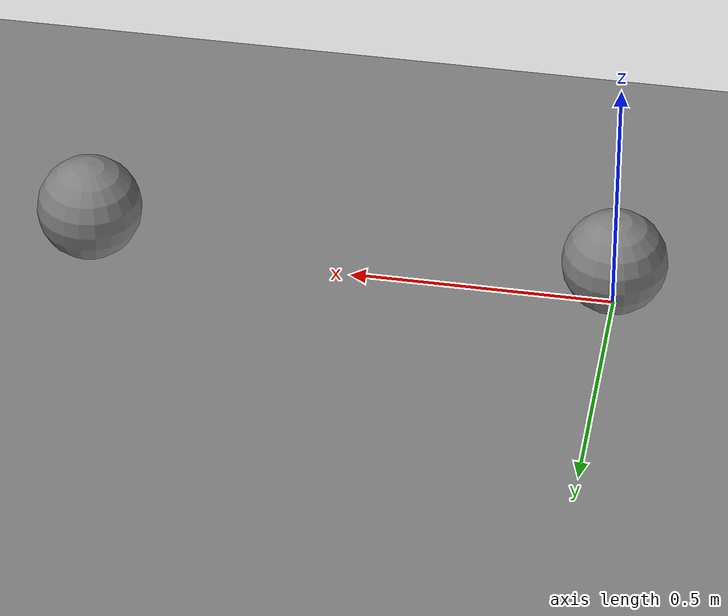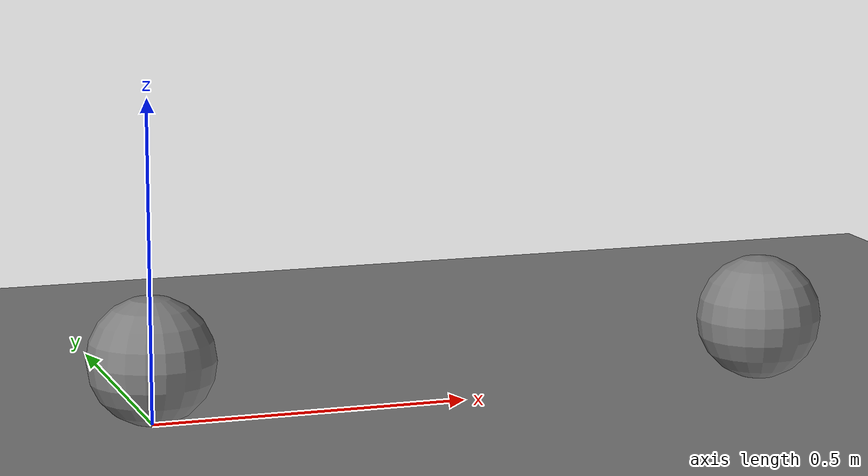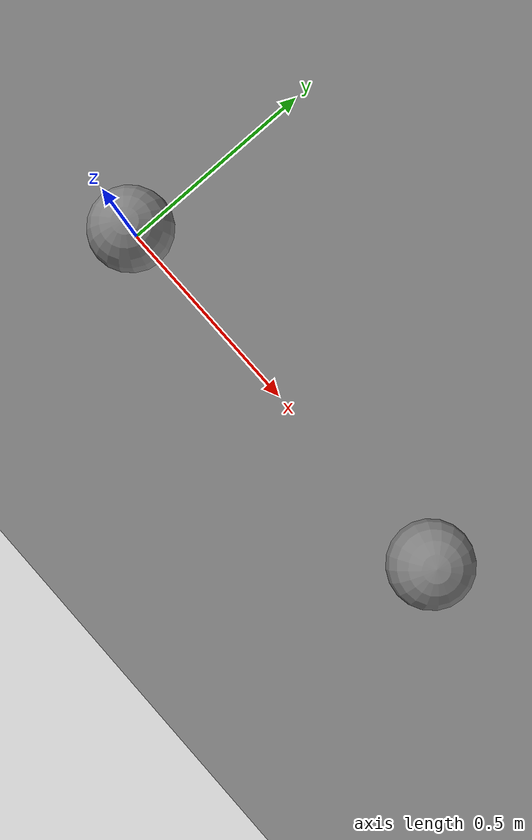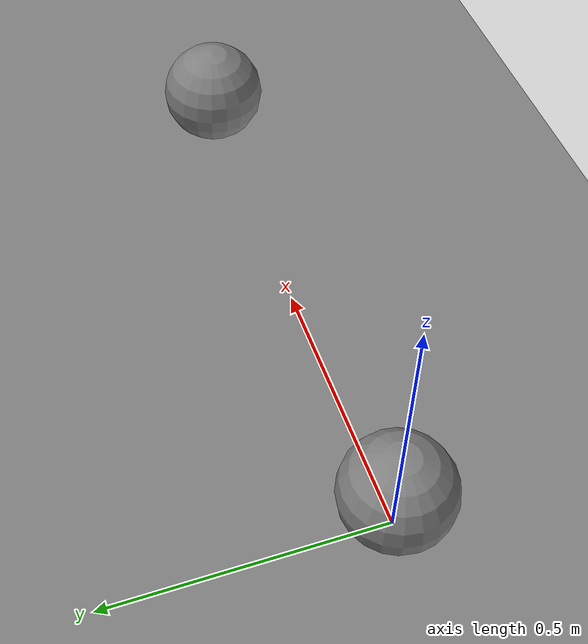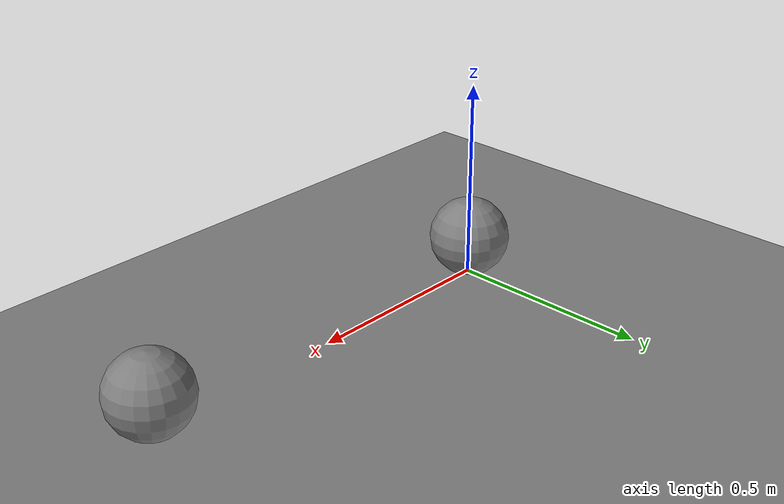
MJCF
<mujoco model="contact_sphere">
  <option timestep="0.002"/>

  <worldbody>
    <geom name="floor" type="plane" size="5 5 .1" friction="0.5 0.005 0.0001"/>

    <body name="rest" pos="0 0 .1">
      <freejoint/>
      <geom name="rest_geom" type="sphere" size=".1" mass="1" friction="0.5 0.005 0.0001"/>
    </body>

    <body name="slide" pos="1 0 .1">
      <freejoint/>
      <geom name="slide_geom" type="sphere" size=".1" mass="1" friction="0.5 0.005 0.0001"/>
    </body>
  </worldbody>
</mujoco>
